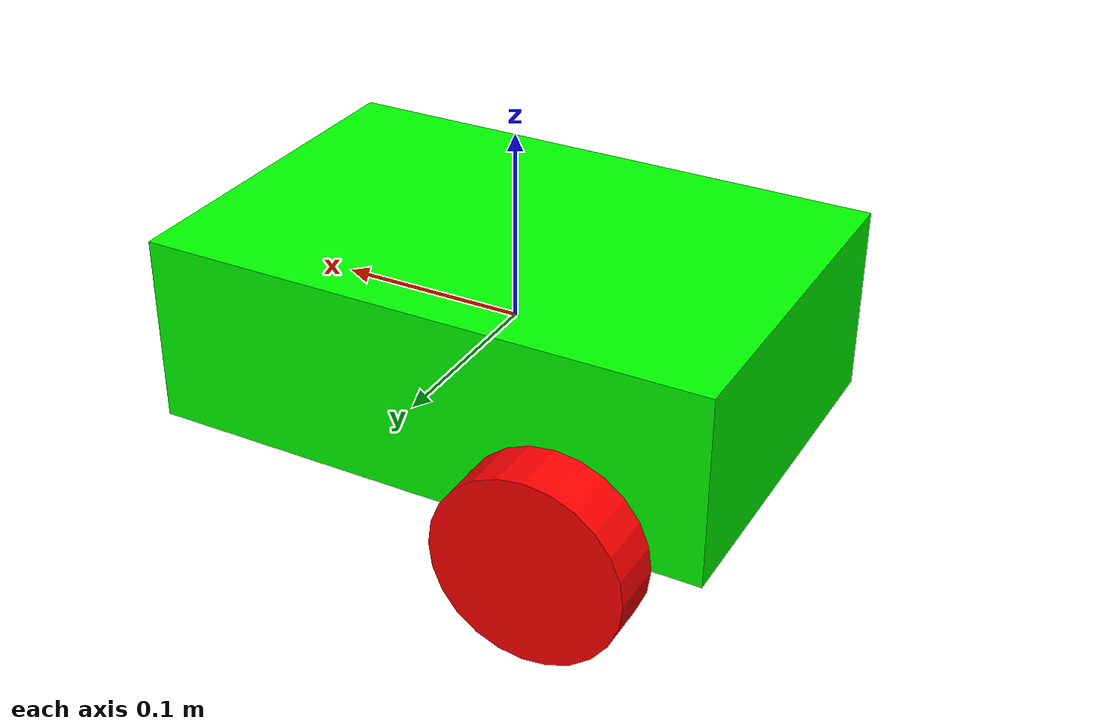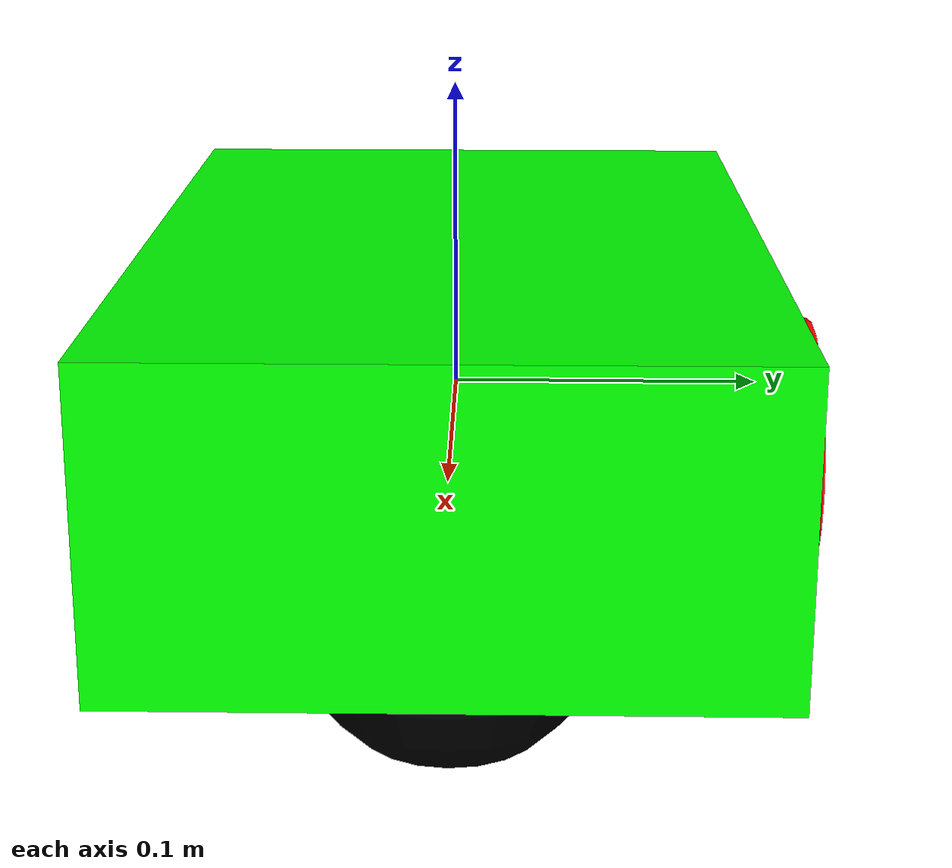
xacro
<?xml version="1.0"?>
<robot xmlns:xacro="http://www.ros.org/wiki/xacro">

    <xacro:include filename="materials.xacro"/>
    <xacro:include filename="inertial_macros.xacro"/>

    <!-- Base Link (Chassis) Properties -->
    <xacro:property name="base_length" value="0.3"/>
    <xacro:property name="base_width" value="0.2"/>
    <xacro:property name="base_height" value="0.1"/>
    <xacro:property name="base_mass" value="2.0"/>

    <!-- Drive Wheel Properties -->
    <xacro:property name="wheel_radius" value="0.05"/>
    <xacro:property name="wheel_width" value="0.03"/>
    <xacro:property name="wheel_mass" value="0.5"/>

    <!-- Caster Wheel Properties -->
    <xacro:property name="caster_radius" value="${wheel_radius}"/>
    <xacro:property name="caster_mass" value="${wheel_mass}"/>

    <!-- Robot Base -->
    <link name="base_link">
        <visual>
            <geometry>
                <box size="${base_length} ${base_width} ${base_height}"/>
            </geometry>
            <origin />
            <material name="green"/>
        </visual>
        <collision>
            <geometry>
                <box size="${base_length} ${base_width} ${base_height}"/>
            </geometry>
            <origin />
        </collision>
        <xacro:inertial_box x="${base_length}" y="${base_width}" z="${base_height}" mass="${base_mass}">
            <origin />
        </xacro:inertial_box>
    </link>
    <gazebo reference="base_link">
        <material>Gazebo/Green</material>
    </gazebo>

    <!-- Robot Footprint -->
    <link name="base_footprint"></link>

    <joint name="base_joint" type="fixed">
        <parent link="base_link"/>
        <child link="base_footprint"/>
        <origin xyz="0.0 0.0 -${(base_height/2)+wheel_radius}"/>
    </joint>

    <!-- Left Drive Wheel -->
    <link name="drivewhl_l_link">
        <visual>
            <geometry>
                <cylinder radius="${wheel_radius}" length="${wheel_width}"/>
            </geometry>
            <origin />
            <material name="red"/>
        </visual>
        <collision>
            <geometry>
                <cylinder radius="${wheel_radius}" length="${wheel_width}"/>
            </geometry>
            <origin />
        </collision>
        <xacro:inertial_cylinder radius="${wheel_radius}" length="${wheel_width}" mass="${wheel_mass}">
            <origin />
        </xacro:inertial_cylinder>
    </link>
    <gazebo reference="drivewhl_l_link">
        <material>Gazebo/Red</material>
    </gazebo>

    <joint name="drivewhl_l_joint" type="continuous">
        <parent link="base_link"/>
        <child link="drivewhl_l_link"/>
        <origin xyz="-${base_length/4} ${(base_width/2)+(wheel_width/2)} -${base_height/2}" rpy="-${pi/2} 0.0 0.0"/>
        <axis xyz="0.0 0.0 1.0"/>
    </joint>

    <!-- Right Drive Wheel -->
    <link name="drivewhl_r_link">
        <visual>
            <geometry>
                <cylinder radius="${wheel_radius}" length="${wheel_width}"/>
            </geometry>
            <material name="red"/>
        </visual>
        <collision>
            <geometry>
                <cylinder radius="${wheel_radius}" length="${wheel_width}"/>
            </geometry>
        </collision>
        <xacro:inertial_cylinder radius="${wheel_radius}" length="${wheel_width}" mass="${wheel_mass}">
            <origin />
        </xacro:inertial_cylinder>
    </link>
    <gazebo reference="drivewhl_r_link">
        <material>Gazebo/Red</material>
    </gazebo>

    <joint name="drivewhl_r_joint" type="continuous">
        <parent link="base_link"/>
        <child link="drivewhl_r_link"/>
        <origin xyz="-${base_length/4} -${(base_width/2)+(wheel_width/2)} -${base_height/2}" rpy="${pi/2} 0.0 0.0"/>
        <axis xyz="0.0 0.0 -1.0"/>
    </joint>

    <!-- Front Caster Wheel -->
    <link name="casterwhl_f_link">
        <visual>
            <geometry>
                <sphere radius="${caster_radius}"/>
            </geometry>
            <material name="black"/>
        </visual>
        <collision>
            <geometry>
                <sphere radius="${caster_radius}"/>
            </geometry>
        </collision>
        <xacro:inertial_sphere radius="${caster_radius}" mass="${caster_mass}">
            <origin />
        </xacro:inertial_sphere>
    </link>
    <gazebo reference="casterwhl_f_link">
        <material>Gazebo/Black</material>
        <mu1 value="0.001"/>
        <mu2 value="0.001"/>
    </gazebo>

    <joint name="casterwhl_f_joint" type="fixed">
        <parent link="base_link"/>
        <child link="casterwhl_f_link"/>
        <origin xyz="${base_length/4} 0.0 -${base_height/2}"/>
    </joint>

</robot>

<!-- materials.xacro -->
<robot xmlns:xacro="http://www.ros.org/wiki/xacro">

    <material name="white">
        <color rgba="1 1 1 1" />
    </material>

    <material name="red">
        <color rgba="1 0 0 1"/>
    </material>

    <material name="green">
        <color rgba="0 1 0 1"/>
    </material>

    <material name="blue">
        <color rgba="0 0 1 1"/>
    </material>

    <material name="orange">
        <color rgba="1 0.3 0.1 1"/>
    </material>

    <material name="black">
        <color rgba="0 0 0 1"/>
    </material>

</robot>

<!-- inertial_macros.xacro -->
<robot xmlns:xacro="http://www.ros.org/wiki/xacro">

    <!-- These equations are based on https://en.wikipedia.org/wiki/List_of_moments_of_inertia#List_of_3D_inertia_tensors -->

    <xacro:macro name="inertial_sphere" params="radius mass *origin">
        <inertial>
            <xacro:insert_block name="origin"/>
            <mass value="${mass}"/>
            <inertia ixx="${(2/5)*mass*radius*radius}" ixy="0.0" ixz="0.0"
                    iyy="${(2/5)*mass*radius*radius}" iyz="0.0"
                    izz="${(2/5)*mass*radius*radius}"/>
        </inertial>
    </xacro:macro>

    <xacro:macro name="inertial_box" params="x y z mass *origin">
        <inertial>
            <xacro:insert_block name="origin"/>
            <mass value="${mass}"/>
            <inertia ixx="${(1/12)*mass*(y*y+z*z)}" ixy="0.0" ixz="0.0"
                    iyy="${(1/12)*mass*(x*x+z*z)}" iyz="0.0"
                    izz="${(1/12)*mass*(x*x+y*y)}"/>
        </inertial>
    </xacro:macro>

    <xacro:macro name="inertial_cylinder" params="radius length mass *origin">
        <inertial>
            <xacro:insert_block name="origin"/>
            <mass value="${mass}"/>
            <inertia ixx="${(1/12)*mass*(3*radius*radius+length*length)}" ixy="0.0" ixz="0.0"
                    iyy="${(1/12)*mass*(3*radius*radius+length*length)}" iyz="0.0"
                    izz="${(1/2)*mass*radius*radius}"/>
        </inertial>
    </xacro:macro>

</robot>
